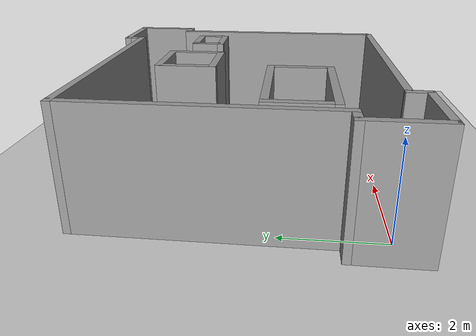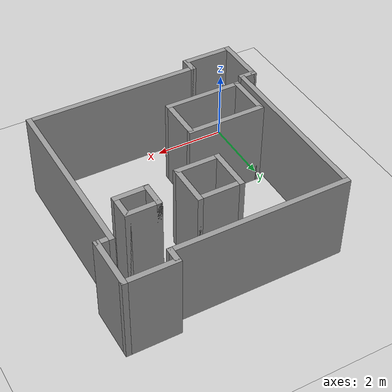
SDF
<?xml version="1.0" ?>
<sdf version='1.8'>
  <world name='map_ign'>

    <plugin
      filename="gz-sim-physics-system"
      name="gz::sim::systems::Physics">
    </plugin>
    <plugin
      filename="gz-sim-user-commands-system"
      name="gz::sim::systems::UserCommands">
    </plugin>
    <plugin
      filename="gz-sim-scene-broadcaster-system"
      name="gz::sim::systems::SceneBroadcaster">
    </plugin>
    <plugin
      filename="gz-sim-sensors-system"
      name="gz::sim::systems::Sensors">
      <render_engine>ogre</render_engine>
    </plugin>
    <plugin
      filename="gz-sim-imu-system"
      name="gz::sim::systems::Imu">
    </plugin>

    <gravity>0 0 -9.8000000000000007</gravity>
    <magnetic_field>6.0000000000000002e-06 2.3e-05 -4.1999999999999998e-05</magnetic_field>
    <atmosphere type='adiabatic'/>

    <physics type='ode'>
      <max_step_size>0.001</max_step_size>
      <real_time_factor>1</real_time_factor>
      <real_time_update_rate>1000</real_time_update_rate>
    </physics>

    <scene>
      <ambient>0.400000006 0.400000006 0.400000006 1</ambient>
      <background>0.699999988 0.699999988 0.699999988 1</background>
      <shadows>true</shadows>
    </scene>

    <audio>
      <device>default</device>
    </audio>
    <wind/>

    <spherical_coordinates>
      <surface_model>EARTH_WGS84</surface_model>
      <latitude_deg>0</latitude_deg>
      <longitude_deg>0</longitude_deg>
      <elevation>0</elevation>
      <heading_deg>0</heading_deg>
    </spherical_coordinates>

    <!-- The state tag contained saved simulation state which caused conflicts -->
    <model name='wall_simple'>
        <pose>2.75 2.75 0 0 0 0</pose>
        <scale>1 1 1</scale>
        <link name='Wall_10'>
          <pose>-0.34999999999999998 0.82499999999999996 0 0 0 3.1415899999999999</pose>
          <velocity>0 0 0 0 0 0</velocity>
          <acceleration>0 0 0 0 0 0</acceleration>
          <wrench>0 0 0 0 0 0</wrench>
        </link>
        <link name='Wall_11'>
          <pose>-0.52500000000000002 0.14999999999999999 0 0 0 -1.5708</pose>
          <velocity>0 0 0 0 0 0</velocity>
          <acceleration>0 0 0 0 0 0</acceleration>
          <wrench>0 0 0 0 0 0</wrench>
        </link>
        <link name='Wall_12'>
          <pose>0.14999999999999999 -0.52500000000000002 0 0 0 0</pose>
          <velocity>0 0 0 0 0 0</velocity>
          <acceleration>0 0 0 0 0 0</acceleration>
          <wrench>0 0 0 0 0 0</wrench>
        </link>
        <link name='Wall_13'>
          <pose>0.82499999999999996 -0.34999999999999998 0 0 0 1.5708</pose>
          <velocity>0 0 0 0 0 0</velocity>
          <acceleration>0 0 0 0 0 0</acceleration>
          <wrench>0 0 0 0 0 0</wrench>
        </link>
        <link name='Wall_14'>
          <pose>3.25 -0.17499999999999999 0 0 0 0</pose>
          <velocity>0 0 0 0 0 0</velocity>
          <acceleration>0 0 0 0 0 0</acceleration>
          <wrench>0 0 0 0 0 0</wrench>
        </link>
        <link name='Wall_15'>
          <pose>5.6749999999999998 2.25 0 0 0 1.5708</pose>
          <velocity>0 0 0 0 0 0</velocity>
          <acceleration>0 0 0 0 0 0</acceleration>
          <wrench>0 0 0 0 0 0</wrench>
        </link>
        <link name='Wall_16'>
          <pose>5.8499999999999996 4.6749999999999998 0 0 0 0</pose>
          <velocity>0 0 0 0 0 0</velocity>
          <acceleration>0 0 0 0 0 0</acceleration>
          <wrench>0 0 0 0 0 0</wrench>
        </link>
        <link name='Wall_17'>
          <pose>6.0250000000000004 5.3499999999999996 0 0 0 1.5708</pose>
          <velocity>0 0 0 0 0 0</velocity>
          <acceleration>0 0 0 0 0 0</acceleration>
          <wrench>0 0 0 0 0 0</wrench>
        </link>
        <link name='Wall_18'>
          <pose>5.3499999999999996 6.0250000000000004 0 0 0 3.1415899999999999</pose>
          <velocity>0 0 0 0 0 0</velocity>
          <acceleration>0 0 0 0 0 0</acceleration>
          <wrench>0 0 0 0 0 0</wrench>
        </link>
        <link name='Wall_19'>
          <pose>4.6749999999999998 5.8499999999999996 0 0 0 -1.5708</pose>
          <velocity>0 0 0 0 0 0</velocity>
          <acceleration>0 0 0 0 0 0</acceleration>
          <wrench>0 0 0 0 0 0</wrench>
        </link>
        <link name='Wall_20'>
          <pose>2.25 5.6749999999999998 0 0 0 3.1415899999999999</pose>
          <velocity>0 0 0 0 0 0</velocity>
          <acceleration>0 0 0 0 0 0</acceleration>
          <wrench>0 0 0 0 0 0</wrench>
        </link>
        <link name='Wall_21'>
          <pose>-0.17499999999999999 3.25 0 0 0 -1.5708</pose>
          <velocity>0 0 0 0 0 0</velocity>
          <acceleration>0 0 0 0 0 0</acceleration>
          <wrench>0 0 0 0 0 0</wrench>
        </link>
        <link name='Wall_26'>
          <pose>1.1683300000000001 1.0412300000000001 0 0 0 3.1415899999999999</pose>
          <velocity>0 0 0 0 0 0</velocity>
          <acceleration>0 0 0 0 0 0</acceleration>
          <wrench>0 0 0 0 0 0</wrench>
        </link>
        <link name='Wall_32'>
          <pose>4.6026699999999998 3.5624199999999999 0 0 0 3.1415899999999999</pose>
          <velocity>0 0 0 0 0 0</velocity>
          <acceleration>0 0 0 0 0 0</acceleration>
          <wrench>0 0 0 0 0 0</wrench>
        </link>
        <link name='Wall_41'>
          <pose>4.17767 3.8624200000000002 0 0 0 1.5708</pose>
          <velocity>0 0 0 0 0 0</velocity>
          <acceleration>0 0 0 0 0 0</acceleration>
          <wrench>0 0 0 0 0 0</wrench>
        </link>
        <link name='Wall_42'>
          <pose>4.6026699999999998 4.16242 0 0 0 0</pose>
          <velocity>0 0 0 0 0 0</velocity>
          <acceleration>0 0 0 0 0 0</acceleration>
          <wrench>0 0 0 0 0 0</wrench>
        </link>
        <link name='Wall_43'>
          <pose>5.0276699999999996 3.8624200000000002 0 0 0 -1.5708</pose>
          <velocity>0 0 0 0 0 0</velocity>
          <acceleration>0 0 0 0 0 0</acceleration>
          <wrench>0 0 0 0 0 0</wrench>
        </link>
        <link name='Wall_46'>
          <pose>2.6956199999999999 3.40097 0 0 0 3.1415899999999999</pose>
          <velocity>0 0 0 0 0 0</velocity>
          <acceleration>0 0 0 0 0 0</acceleration>
          <wrench>0 0 0 0 0 0</wrench>
        </link>
        <link name='Wall_47'>
          <pose>2.1096699999999999 3.9509699999999999 0 0 0 1.5708</pose>
          <velocity>0 0 0 0 0 0</velocity>
          <acceleration>0 0 0 0 0 0</acceleration>
          <wrench>0 0 0 0 0 0</wrench>
        </link>
        <link name='Wall_48'>
          <pose>2.6956199999999999 4.5009699999999997 0 0 0 0</pose>
          <velocity>0 0 0 0 0 0</velocity>
          <acceleration>0 0 0 0 0 0</acceleration>
          <wrench>0 0 0 0 0 0</wrench>
        </link>
        <link name='Wall_49'>
          <pose>3.2669000000000001 3.9509699999999999 0 0 0 -1.5708</pose>
          <velocity>0 0 0 0 0 0</velocity>
          <acceleration>0 0 0 0 0 0</acceleration>
          <wrench>0 0 0 0 0 0</wrench>
        </link>
        <link name='Wall_51'>
          <pose>0.11833 1.6432599999999999 0 0 0 1.5708</pose>
          <velocity>0 0 0 0 0 0</velocity>
          <acceleration>0 0 0 0 0 0</acceleration>
          <wrench>0 0 0 0 0 0</wrench>
        </link>
        <link name='Wall_52'>
          <pose>1.1683300000000001 2.2306300000000001 0 0 0 0</pose>
          <velocity>0 0 0 0 0 0</velocity>
          <acceleration>0 0 0 0 0 0</acceleration>
          <wrench>0 0 0 0 0 0</wrench>
        </link>
        <link name='Wall_53'>
          <pose>2.2183299999999999 1.6432599999999999 0 0 0 -1.5708</pose>
          <velocity>0 0 0 0 0 0</velocity>
          <acceleration>0 0 0 0 0 0</acceleration>
          <wrench>0 0 0 0 0 0</wrench>
        </link>
      </model>

    <!-- Removed state tag content to avoid duplicate definitions -->

    <gui fullscreen='false'>
      <camera name='user_camera'>
        <pose>-0.00172 0.003388 10.028 1.0000000009550425e-06 1.5156400000000032 1.9441900000000003</pose>
        <view_controller>orbit</view_controller>
        <projection_type>perspective</projection_type>
      </camera>
    </gui>

    <model name='ground_plane'>
      <static>true</static>
      <link name='link'>
        <collision name='collision'>
          <geometry>
            <plane>
              <normal>0 0 1</normal>
              <size>100 100</size>
            </plane>
          </geometry>
          <surface>
            <friction>
              <ode>
                <mu>100</mu>
                <mu2>50</mu2>
              </ode>
              <torsional>
                <ode/>
              </torsional>
            </friction>
            <contact>
              <ode/>
            </contact>
            <bounce/>
          </surface>
          <max_contacts>10</max_contacts>
        </collision>
        <visual name='visual'>
          <cast_shadows>false</cast_shadows>
          <geometry>
            <plane>
              <normal>0 0 1</normal>
              <size>100 100</size>
            </plane>
          </geometry>
          <material>
            <script>
              <uri>file://media/materials/scripts/gazebo.material</uri>
              <name>Gazebo/Grey</name>
            </script>
            <ambient>0.8 0.8 0.8 1</ambient>
            <diffuse>0.8 0.8 0.8 1</diffuse>
            <specular>0.1 0.1 0.1 1</specular>
          </material>
        </visual>
        <self_collide>false</self_collide>
        <enable_wind>false</enable_wind>
        <kinematic>false</kinematic>
        <pose>0 0 0 0 0 0</pose>
        <inertial>
          <pose>0 0 0 0 0 0</pose>
          <mass>1</mass>
          <inertia>
            <ixx>1</ixx>
            <ixy>0</ixy>
            <ixz>0</ixz>
            <iyy>1</iyy>
            <iyz>0</iyz>
            <izz>1</izz>
          </inertia>
        </inertial>
      </link>
      <pose>0 0 0 0 0 0</pose>
      <self_collide>false</self_collide>
    </model>

    <model name='wall_simple'>
      <pose>2.75 2.75 0 0 0 0</pose>
      <link name='Wall_10'>
        <collision name='Wall_10_Collision'>
          <geometry>
            <box>
              <size>0.5 0.14999999999999999 2.5</size>
            </box>
          </geometry>
          <pose>0 0 1.25 0 0 0</pose>
          <max_contacts>10</max_contacts>
          <surface>
            <contact>
              <ode/>
            </contact>
            <bounce/>
            <friction>
              <torsional>
                <ode/>
              </torsional>
              <ode/>
            </friction>
          </surface>
        </collision>
        <visual name='Wall_10_Visual'>
          <pose>0 0 1.25 0 0 0</pose>
          <geometry>
            <box>
              <size>0.5 0.14999999999999999 2.5</size>
            </box>
          </geometry>
          <material>
            <script>
              <uri>file://media/materials/scripts/gazebo.material</uri>
              <name>Gazebo/Grey</name>
            </script>
            <ambient>1 1 1 1</ambient>
            <diffuse>0.8 0.8 0.8 1</diffuse>
            <specular>0.1 0.1 0.1 1</specular>
          </material>
          <meta>
            <layer>0</layer>
          </meta>
        </visual>
        <pose>-3.1000000000000001 -1.925 0 0 0 3.1415899999999999</pose>
        <self_collide>false</self_collide>
        <enable_wind>false</enable_wind>
        <kinematic>false</kinematic>
        <inertial>
          <pose>0 0 0 0 0 0</pose>
          <mass>1</mass>
          <inertia>
            <ixx>1</ixx>
            <ixy>0</ixy>
            <ixz>0</ixz>
            <iyy>1</iyy>
            <iyz>0</iyz>
            <izz>1</izz>
          </inertia>
        </inertial>
      </link>
      <link name='Wall_11'>
        <collision name='Wall_11_Collision'>
          <geometry>
            <box>
              <size>1.5 0.14999999999999999 2.5</size>
            </box>
          </geometry>
          <pose>0 0 1.25 0 0 0</pose>
          <max_contacts>10</max_contacts>
          <surface>
            <contact>
              <ode/>
            </contact>
            <bounce/>
            <friction>
              <torsional>
                <ode/>
              </torsional>
              <ode/>
            </friction>
          </surface>
        </collision>
        <visual name='Wall_11_Visual'>
          <pose>0 0 1.25 0 0 0</pose>
          <geometry>
            <box>
              <size>1.5 0.14999999999999999 2.5</size>
            </box>
          </geometry>
          <material>
            <script>
              <uri>file://media/materials/scripts/gazebo.material</uri>
              <name>Gazebo/Grey</name>
            </script>
            <ambient>1 1 1 1</ambient>
            <diffuse>0.8 0.8 0.8 1</diffuse>
            <specular>0.1 0.1 0.1 1</specular>
          </material>
          <meta>
            <layer>0</layer>
          </meta>
        </visual>
        <pose>-3.2750000000000017 -2.5999999999999988 0 0 0 -1.5708000000000009</pose>
        <self_collide>false</self_collide>
        <enable_wind>false</enable_wind>
        <kinematic>false</kinematic>
        <inertial>
          <pose>0 0 0 0 0 0</pose>
          <mass>1</mass>
          <inertia>
            <ixx>1</ixx>
            <ixy>0</ixy>
            <ixz>0</ixz>
            <iyy>1</iyy>
            <iyz>0</iyz>
            <izz>1</izz>
          </inertia>
        </inertial>
      </link>
      <link name='Wall_12'>
        <collision name='Wall_12_Collision'>
          <geometry>
            <box>
              <size>1.5 0.14999999999999999 2.5</size>
            </box>
          </geometry>
          <pose>0 0 1.25 0 0 0</pose>
          <max_contacts>10</max_contacts>
          <surface>
            <contact>
              <ode/>
            </contact>
            <bounce/>
            <friction>
              <torsional>
                <ode/>
              </torsional>
              <ode/>
            </friction>
          </surface>
        </collision>
        <visual name='Wall_12_Visual'>
          <pose>0 0 1.25 0 0 0</pose>
          <geometry>
            <box>
              <size>1.5 0.14999999999999999 2.5</size>
            </box>
          </geometry>
          <material>
            <script>
              <uri>file://media/materials/scripts/gazebo.material</uri>
              <name>Gazebo/Grey</name>
            </script>
            <ambient>1 1 1 1</ambient>
            <diffuse>0.8 0.8 0.8 1</diffuse>
            <specular>0.1 0.1 0.1 1</specular>
          </material>
          <meta>
            <layer>0</layer>
          </meta>
        </visual>
        <pose>-2.6000000000000028 -3.2749999999999986 0 0 0 0</pose>
        <self_collide>false</self_collide>
        <enable_wind>false</enable_wind>
        <kinematic>false</kinematic>
        <inertial>
          <pose>0 0 0 0 0 0</pose>
          <mass>1</mass>
          <inertia>
            <ixx>1</ixx>
            <ixy>0</ixy>
            <ixz>0</ixz>
            <iyy>1</iyy>
            <iyz>0</iyz>
            <izz>1</izz>
          </inertia>
        </inertial>
      </link>
      <link name='Wall_13'>
        <collision name='Wall_13_Collision'>
          <geometry>
            <box>
              <size>0.5 0.14999999999999999 2.5</size>
            </box>
          </geometry>
          <pose>0 0 1.25 0 0 0</pose>
          <max_contacts>10</max_contacts>
          <surface>
            <contact>
              <ode/>
            </contact>
            <bounce/>
            <friction>
              <torsional>
                <ode/>
              </torsional>
              <ode/>
            </friction>
          </surface>
        </collision>
        <visual name='Wall_13_Visual'>
          <pose>0 0 1.25 0 0 0</pose>
          <geometry>
            <box>
              <size>0.5 0.14999999999999999 2.5</size>
            </box>
          </geometry>
          <material>
            <script>
              <uri>file://media/materials/scripts/gazebo.material</uri>
              <name>Gazebo/Grey</name>
            </script>
            <ambient>1 1 1 1</ambient>
            <diffuse>0.8 0.8 0.8 1</diffuse>
            <specular>0.1 0.1 0.1 1</specular>
          </material>
          <meta>
            <layer>0</layer>
          </meta>
        </visual>
        <pose>-1.925000000000002 -3.0999999999999988 0 0 0 1.5708000000000009</pose>
        <self_collide>false</self_collide>
        <enable_wind>false</enable_wind>
        <kinematic>false</kinematic>
        <inertial>
          <pose>0 0 0 0 0 0</pose>
          <mass>1</mass>
          <inertia>
            <ixx>1</ixx>
            <ixy>0</ixy>
            <ixz>0</ixz>
            <iyy>1</iyy>
            <iyz>0</iyz>
            <izz>1</izz>
          </inertia>
        </inertial>
      </link>
      <link name='Wall_14'>
        <collision name='Wall_14_Collision'>
          <geometry>
            <box>
              <size>5 0.14999999999999999 2.5</size>
            </box>
          </geometry>
          <pose>0 0 1.25 0 0 0</pose>
          <max_contacts>10</max_contacts>
          <surface>
            <contact>
              <ode/>
            </contact>
            <bounce/>
            <friction>
              <torsional>
                <ode/>
              </torsional>
              <ode/>
            </friction>
          </surface>
        </collision>
        <visual name='Wall_14_Visual'>
          <pose>0 0 1.25 0 0 0</pose>
          <geometry>
            <box>
              <size>5 0.14999999999999999 2.5</size>
            </box>
          </geometry>
          <material>
            <script>
              <uri>file://media/materials/scripts/gazebo.material</uri>
              <name>Gazebo/Grey</name>
            </script>
            <ambient>1 1 1 1</ambient>
            <diffuse>0.8 0.8 0.8 1</diffuse>
            <specular>0.1 0.1 0.1 1</specular>
          </material>
          <meta>
            <layer>0</layer>
          </meta>
        </visual>
        <pose>0.49999999999999867 -2.924999999999998 0 0 0 0</pose>
        <self_collide>false</self_collide>
        <enable_wind>false</enable_wind>
        <kinematic>false</kinematic>
        <inertial>
          <pose>0 0 0 0 0 0</pose>
          <mass>1</mass>
          <inertia>
            <ixx>1</ixx>
            <ixy>0</ixy>
            <ixz>0</ixz>
            <iyy>1</iyy>
            <iyz>0</iyz>
            <izz>1</izz>
          </inertia>
        </inertial>
      </link>
      <link name='Wall_15'>
        <collision name='Wall_15_Collision'>
          <geometry>
            <box>
              <size>5 0.14999999999999999 2.5</size>
            </box>
          </geometry>
          <pose>0 0 1.25 0 0 0</pose>
          <max_contacts>10</max_contacts>
          <surface>
            <contact>
              <ode/>
            </contact>
            <bounce/>
            <friction>
              <torsional>
                <ode/>
              </torsional>
              <ode/>
            </friction>
          </surface>
        </collision>
        <visual name='Wall_15_Visual'>
          <pose>0 0 1.25 0 0 0</pose>
          <geometry>
            <box>
              <size>5 0.14999999999999999 2.5</size>
            </box>
          </geometry>
          <material>
            <script>
              <uri>file://media/materials/scripts/gazebo.material</uri>
              <name>Gazebo/Grey</name>
            </script>
            <ambient>1 1 1 1</ambient>
            <diffuse>0.8 0.8 0.8 1</diffuse>
            <specular>0.1 0.1 0.1 1</specular>
          </material>
          <meta>
            <layer>0</layer>
          </meta>
        </visual>
        <pose>2.924999999999998 -0.49999999999999822 0 0 0 1.5708000000000009</pose>
        <self_collide>false</self_collide>
        <enable_wind>false</enable_wind>
        <kinematic>false</kinematic>
        <inertial>
          <pose>0 0 0 0 0 0</pose>
          <mass>1</mass>
          <inertia>
            <ixx>1</ixx>
            <ixy>0</ixy>
            <ixz>0</ixz>
            <iyy>1</iyy>
            <iyz>0</iyz>
            <izz>1</izz>
          </inertia>
        </inertial>
      </link>
      <link name='Wall_16'>
        <collision name='Wall_16_Collision'>
          <geometry>
            <box>
              <size>0.5 0.14999999999999999 2.5</size>
            </box>
          </geometry>
          <pose>0 0 1.25 0 0 0</pose>
          <max_contacts>10</max_contacts>
          <surface>
            <contact>
              <ode/>
            </contact>
            <bounce/>
            <friction>
              <torsional>
                <ode/>
              </torsional>
              <ode/>
            </friction>
          </surface>
        </collision>
        <visual name='Wall_16_Visual'>
          <pose>0 0 1.25 0 0 0</pose>
          <geometry>
            <box>
              <size>0.5 0.14999999999999999 2.5</size>
            </box>
          </geometry>
          <material>
            <script>
              <uri>file://media/materials/scripts/gazebo.material</uri>
              <name>Gazebo/Grey</name>
            </script>
            <ambient>1 1 1 1</ambient>
            <diffuse>0.8 0.8 0.8 1</diffuse>
            <specular>0.1 0.1 0.1 1</specular>
          </material>
          <meta>
            <layer>0</layer>
          </meta>
        </visual>
        <pose>3.0999999999999988 1.9250000000000025 0 0 0 0</pose>
        <self_collide>false</self_collide>
        <enable_wind>false</enable_wind>
        <kinematic>false</kinematic>
        <inertial>
          <pose>0 0 0 0 0 0</pose>
          <mass>1</mass>
          <inertia>
            <ixx>1</ixx>
            <ixy>0</ixy>
            <ixz>0</ixz>
            <iyy>1</iyy>
            <iyz>0</iyz>
            <izz>1</izz>
          </inertia>
        </inertial>
      </link>
      <link name='Wall_17'>
        <collision name='Wall_17_Collision'>
          <geometry>
            <box>
              <size>1.5 0.14999999999999999 2.5</size>
            </box>
          </geometry>
          <pose>0 0 1.25 0 0 0</pose>
          <max_contacts>10</max_contacts>
          <surface>
            <contact>
              <ode/>
            </contact>
            <bounce/>
            <friction>
              <torsional>
                <ode/>
              </torsional>
              <ode/>
            </friction>
          </surface>
        </collision>
        <visual name='Wall_17_Visual'>
          <pose>0 0 1.25 0 0 0</pose>
          <geometry>
            <box>
              <size>1.5 0.14999999999999999 2.5</size>
            </box>
          </geometry>
          <material>
            <script>
              <uri>file://media/materials/scripts/gazebo.material</uri>
              <name>Gazebo/Grey</name>
            </script>
            <ambient>1 1 1 1</ambient>
            <diffuse>0.8 0.8 0.8 1</diffuse>
            <specular>0.1 0.1 0.1 1</specular>
          </material>
          <meta>
            <layer>0</layer>
          </meta>
        </visual>
        <pose>3.2749999999999977 2.6000000000000023 0 0 0 1.5708000000000009</pose>
        <self_collide>false</self_collide>
        <enable_wind>false</enable_wind>
        <kinematic>false</kinematic>
        <inertial>
          <pose>0 0 0 0 0 0</pose>
          <mass>1</mass>
          <inertia>
            <ixx>1</ixx>
            <ixy>0</ixy>
            <ixz>0</ixz>
            <iyy>1</iyy>
            <iyz>0</iyz>
            <izz>1</izz>
          </inertia>
        </inertial>
      </link>
      <link name='Wall_18'>
        <collision name='Wall_18_Collision'>
          <geometry>
            <box>
              <size>1.5 0.14999999999999999 2.5</size>
            </box>
          </geometry>
          <pose>0 0 1.25 0 0 0</pose>
          <max_contacts>10</max_contacts>
          <surface>
            <contact>
              <ode/>
            </contact>
            <bounce/>
            <friction>
              <torsional>
                <ode/>
              </torsional>
              <ode/>
            </friction>
          </surface>
        </collision>
        <visual name='Wall_18_Visual'>
          <pose>0 0 1.25 0 0 0</pose>
          <geometry>
            <box>
              <size>1.5 0.14999999999999999 2.5</size>
            </box>
          </geometry>
          <material>
            <script>
              <uri>file://media/materials/scripts/gazebo.material</uri>
              <name>Gazebo/Grey</name>
            </script>
            <ambient>1 1 1 1</ambient>
            <diffuse>0.8 0.8 0.8 1</diffuse>
            <specular>0.1 0.1 0.1 1</specular>
          </material>
          <meta>
            <layer>0</layer>
          </meta>
        </visual>
        <pose>2.5999999999999988 3.2750000000000012 0 0 0 3.1415899999999999</pose>
        <self_collide>false</self_collide>
        <enable_wind>false</enable_wind>
        <kinematic>false</kinematic>
        <inertial>
          <pose>0 0 0 0 0 0</pose>
          <mass>1</mass>
          <inertia>
            <ixx>1</ixx>
            <ixy>0</ixy>
            <ixz>0</ixz>
            <iyy>1</iyy>
            <iyz>0</iyz>
            <izz>1</izz>
          </inertia>
        </inertial>
      </link>
      <link name='Wall_19'>
        <collision name='Wall_19_Collision'>
          <geometry>
            <box>
              <size>0.5 0.14999999999999999 2.5</size>
            </box>
          </geometry>
          <pose>0 0 1.25 0 0 0</pose>
          <max_contacts>10</max_contacts>
          <surface>
            <contact>
              <ode/>
            </contact>
            <bounce/>
            <friction>
              <torsional>
                <ode/>
              </torsional>
              <ode/>
            </friction>
          </surface>
        </collision>
        <visual name='Wall_19_Visual'>
          <pose>0 0 1.25 0 0 0</pose>
          <geometry>
            <box>
              <size>0.5 0.14999999999999999 2.5</size>
            </box>
          </geometry>
          <material>
            <script>
              <uri>file://media/materials/scripts/gazebo.material</uri>
              <name>Gazebo/Grey</name>
            </script>
            <ambient>1 1 1 1</ambient>
            <diffuse>0.8 0.8 0.8 1</diffuse>
            <specular>0.1 0.1 0.1 1</specular>
          </material>
          <meta>
            <layer>0</layer>
          </meta>
        </visual>
        <pose>1.924999999999998 3.1000000000000014 0 0 0 -1.5708000000000009</pose>
        <self_collide>false</self_collide>
        <enable_wind>false</enable_wind>
        <kinematic>false</kinematic>
        <inertial>
          <pose>0 0 0 0 0 0</pose>
          <mass>1</mass>
          <inertia>
            <ixx>1</ixx>
            <ixy>0</ixy>
            <ixz>0</ixz>
            <iyy>1</iyy>
            <iyz>0</iyz>
            <izz>1</izz>
          </inertia>
        </inertial>
      </link>
      <link name='Wall_20'>
        <collision name='Wall_20_Collision'>
          <geometry>
            <box>
              <size>5 0.14999999999999999 2.5</size>
            </box>
          </geometry>
          <pose>0 0 1.25 0 0 0</pose>
          <max_contacts>10</max_contacts>
          <surface>
            <contact>
              <ode/>
            </contact>
            <bounce/>
            <friction>
              <torsional>
                <ode/>
              </torsional>
              <ode/>
            </friction>
          </surface>
        </collision>
        <visual name='Wall_20_Visual'>
          <pose>0 0 1.25 0 0 0</pose>
          <geometry>
            <box>
              <size>5 0.14999999999999999 2.5</size>
            </box>
          </geometry>
          <material>
            <script>
              <uri>file://media/materials/scripts/gazebo.material</uri>
              <name>Gazebo/Grey</name>
            </script>
            <ambient>1 1 1 1</ambient>
            <diffuse>0.8 0.8 0.8 1</diffuse>
            <specular>0.1 0.1 0.1 1</specular>
          </material>
          <meta>
            <layer>0</layer>
          </meta>
        </visual>
        <pose>-0.50000000000000133 2.9250000000000016 0 0 0 3.1415899999999999</pose>
        <self_collide>false</self_collide>
        <enable_wind>false</enable_wind>
        <kinematic>false</kinematic>
        <inertial>
          <pose>0 0 0 0 0 0</pose>
          <mass>1</mass>
          <inertia>
            <ixx>1</ixx>
            <ixy>0</ixy>
            <ixz>0</ixz>
            <iyy>1</iyy>
            <iyz>0</iyz>
            <izz>1</izz>
          </inertia>
        </inertial>
      </link>
      <link name='Wall_21'>
        <collision name='Wall_21_Collision'>
          <geometry>
            <box>
              <size>5 0.14999999999999999 2.5</size>
            </box>
          </geometry>
          <pose>0 0 1.25 0 0 0</pose>
          <max_contacts>10</max_contacts>
          <surface>
            <contact>
              <ode/>
            </contact>
            <bounce/>
            <friction>
              <torsional>
                <ode/>
              </torsional>
              <ode/>
            </friction>
          </surface>
        </collision>
        <visual name='Wall_21_Visual'>
          <pose>0 0 1.25 0 0 0</pose>
          <geometry>
            <box>
              <size>5 0.14999999999999999 2.5</size>
            </box>
          </geometry>
          <material>
            <script>
              <uri>file://media/materials/scripts/gazebo.material</uri>
              <name>Gazebo/Grey</name>
            </script>
            <ambient>1 1 1 1</ambient>
            <diffuse>0.8 0.8 0.8 1</diffuse>
            <specular>0.1 0.1 0.1 1</specular>
          </material>
          <meta>
            <layer>0</layer>
          </meta>
        </visual>
        <pose>-2.925000000000002 0.50000000000000178 0 0 0 -1.5708000000000009</pose>
        <self_collide>false</self_collide>
        <enable_wind>false</enable_wind>
        <kinematic>false</kinematic>
        <inertial>
          <pose>0 0 0 0 0 0</pose>
          <mass>1</mass>
          <inertia>
            <ixx>1</ixx>
            <ixy>0</ixy>
            <ixz>0</ixz>
            <iyy>1</iyy>
            <iyz>0</iyz>
            <izz>1</izz>
          </inertia>
        </inertial>
      </link>
      <link name='Wall_26'>
        <collision name='Wall_26_Collision'>
          <geometry>
            <box>
              <size>2.25 0.14999999999999999 2.5</size>
            </box>
          </geometry>
          <pose>0 0 1.25 0 0 0</pose>
          <max_contacts>10</max_contacts>
          <surface>
            <contact>
              <ode/>
            </contact>
            <bounce/>
            <friction>
              <torsional>
                <ode/>
              </torsional>
              <ode/>
            </friction>
          </surface>
        </collision>
        <visual name='Wall_26_Visual'>
          <pose>0 0 1.25 0 0 0</pose>
          <geometry>
            <box>
              <size>2.25 0.14999999999999999 2.5</size>
            </box>
          </geometry>
          <material>
            <script>
              <uri>file://media/materials/scripts/gazebo.material</uri>
              <name>Gazebo/Grey</name>
            </script>
            <ambient>1 1 1 1</ambient>
            <diffuse>0.8 0.8 0.8 1</diffuse>
            <specular>0.1 0.1 0.1 1</specular>
          </material>
          <meta>
            <layer>0</layer>
          </meta>
        </visual>
        <pose>-1.5816700000000021 -1.7087699999999981 0 0 0 3.1415899999999999</pose>
        <self_collide>false</self_collide>
        <enable_wind>false</enable_wind>
        <kinematic>false</kinematic>
        <inertial>
          <pose>0 0 0 0 0 0</pose>
          <mass>1</mass>
          <inertia>
            <ixx>1</ixx>
            <ixy>0</ixy>
            <ixz>0</ixz>
            <iyy>1</iyy>
            <iyz>0</iyz>
            <izz>1</izz>
          </inertia>
        </inertial>
      </link>
      <link name='Wall_32'>
        <collision name='Wall_32_Collision'>
          <geometry>
            <box>
              <size>1 0.14999999999999999 2.5</size>
            </box>
          </geometry>
          <pose>0 0 1.25 0 0 0</pose>
          <max_contacts>10</max_contacts>
          <surface>
            <contact>
              <ode/>
            </contact>
            <bounce/>
            <friction>
              <torsional>
                <ode/>
              </torsional>
              <ode/>
            </friction>
          </surface>
        </collision>
        <visual name='Wall_32_Visual'>
          <pose>0 0 1.25 0 0 0</pose>
          <geometry>
            <box>
              <size>1 0.14999999999999999 2.5</size>
            </box>
          </geometry>
          <material>
            <script>
              <uri>file://media/materials/scripts/gazebo.material</uri>
              <name>Gazebo/Grey</name>
            </script>
            <ambient>1 1 1 1</ambient>
            <diffuse>0.8 0.8 0.8 1</diffuse>
            <specular>0.1 0.1 0.1 1</specular>
          </material>
          <meta>
            <layer>0</layer>
          </meta>
        </visual>
        <pose>1.8526699999999989 0.81242300000000212 0 0 0 3.1415899999999999</pose>
        <self_collide>false</self_collide>
        <enable_wind>false</enable_wind>
        <kinematic>false</kinematic>
        <inertial>
          <pose>0 0 0 0 0 0</pose>
          <mass>1</mass>
          <inertia>
            <ixx>1</ixx>
            <ixy>0</ixy>
            <ixz>0</ixz>
            <iyy>1</iyy>
            <iyz>0</iyz>
            <izz>1</izz>
          </inertia>
        </inertial>
      </link>
      <link name='Wall_41'>
        <collision name='Wall_41_Collision'>
          <geometry>
            <box>
              <size>0.75 0.14999999999999999 2.5</size>
            </box>
          </geometry>
          <pose>0 0 1.25 0 0 0</pose>
          <max_contacts>10</max_contacts>
          <surface>
            <contact>
              <ode/>
            </contact>
            <bounce/>
            <friction>
              <torsional>
                <ode/>
              </torsional>
              <ode/>
            </friction>
          </surface>
        </collision>
        <visual name='Wall_41_Visual'>
          <pose>0 0 1.25 0 0 0</pose>
          <geometry>
            <box>
              <size>0.75 0.14999999999999999 2.5</size>
            </box>
          </geometry>
          <material>
            <script>
              <uri>file://media/materials/scripts/gazebo.material</uri>
              <name>Gazebo/Grey</name>
            </script>
            <ambient>1 1 1 1</ambient>
            <diffuse>0.8 0.8 0.8 1</diffuse>
            <specular>0.1 0.1 0.1 1</specular>
          </material>
          <meta>
            <layer>0</layer>
          </meta>
        </visual>
        <pose>1.4276699999999982 1.112420000000002 0 0 0 1.5708000000000009</pose>
        <self_collide>false</self_collide>
        <enable_wind>false</enable_wind>
        <kinematic>false</kinematic>
        <inertial>
          <pose>0 0 0 0 0 0</pose>
          <mass>1</mass>
          <inertia>
            <ixx>1</ixx>
            <ixy>0</ixy>
            <ixz>0</ixz>
            <iyy>1</iyy>
            <iyz>0</iyz>
            <izz>1</izz>
          </inertia>
        </inertial>
      </link>
      <link name='Wall_42'>
        <collision name='Wall_42_Collision'>
          <geometry>
            <box>
              <size>1 0.14999999999999999 2.5</size>
            </box>
          </geometry>
          <pose>0 0 1.25 0 0 0</pose>
          <max_contacts>10</max_contacts>
          <surface>
            <contact>
              <ode/>
            </contact>
            <bounce/>
            <friction>
              <torsional>
                <ode/>
              </torsional>
              <ode/>
            </friction>
          </surface>
        </collision>
        <visual name='Wall_42_Visual'>
          <pose>0 0 1.25 0 0 0</pose>
          <geometry>
            <box>
              <size>1 0.14999999999999999 2.5</size>
            </box>
          </geometry>
          <material>
            <script>
              <uri>file://media/materials/scripts/gazebo.material</uri>
              <name>Gazebo/Grey</name>
            </script>
            <ambient>1 1 1 1</ambient>
            <diffuse>0.8 0.8 0.8 1</diffuse>
            <specular>0.1 0.1 0.1 1</specular>
          </material>
          <meta>
            <layer>0</layer>
          </meta>
        </visual>
        <pose>1.8526699999999989 1.4124200000000018 0 0 0 0</pose>
        <self_collide>false</self_collide>
        <enable_wind>false</enable_wind>
        <kinematic>false</kinematic>
        <inertial>
          <pose>0 0 0 0 0 0</pose>
          <mass>1</mass>
          <inertia>
            <ixx>1</ixx>
            <ixy>0</ixy>
            <ixz>0</ixz>
            <iyy>1</iyy>
            <iyz>0</iyz>
            <izz>1</izz>
          </inertia>
        </inertial>
      </link>
      <link name='Wall_43'>
        <collision name='Wall_43_Collision'>
          <geometry>
            <box>
              <size>0.75 0.14999999999999999 2.5</size>
            </box>
          </geometry>
          <pose>0 0 1.25 0 0 0</pose>
          <max_contacts>10</max_contacts>
          <surface>
            <contact>
              <ode/>
            </contact>
            <bounce/>
            <friction>
              <torsional>
                <ode/>
              </torsional>
              <ode/>
            </friction>
          </surface>
        </collision>
        <visual name='Wall_43_Visual'>
          <pose>0 0 1.25 0 0 0</pose>
          <geometry>
            <box>
              <size>0.75 0.14999999999999999 2.5</size>
            </box>
          </geometry>
          <material>
            <script>
              <uri>file://media/materials/scripts/gazebo.material</uri>
              <name>Gazebo/Grey</name>
            </script>
            <ambient>1 1 1 1</ambient>
          </material>
          <meta>
            <layer>0</layer>
          </meta>
        </visual>
        <pose>2.2776699999999979 1.112420000000002 0 0 0 -1.5708000000000009</pose>
        <self_collide>false</self_collide>
        <enable_wind>false</enable_wind>
        <kinematic>false</kinematic>
        <inertial>
          <pose>0 0 0 0 0 0</pose>
          <mass>1</mass>
          <inertia>
            <ixx>1</ixx>
            <ixy>0</ixy>
            <ixz>0</ixz>
            <iyy>1</iyy>
            <iyz>0</iyz>
            <izz>1</izz>
          </inertia>
        </inertial>
      </link>
      <link name='Wall_46'>
        <collision name='Wall_46_Collision'>
          <geometry>
            <box>
              <size>1.29257 0.14999999999999999 2.5</size>
            </box>
          </geometry>
          <pose>0 0 1.25 0 0 0</pose>
          <max_contacts>10</max_contacts>
          <surface>
            <contact>
              <ode/>
            </contact>
            <bounce/>
            <friction>
              <torsional>
                <ode/>
              </torsional>
              <ode/>
            </friction>
          </surface>
        </collision>
        <visual name='Wall_46_Visual'>
          <pose>0 0 1.25 0 0 0</pose>
          <geometry>
            <box>
              <size>1.29257 0.14999999999999999 2.5</size>
            </box>
          </geometry>
          <material>
            <script>
              <uri>file://media/materials/scripts/gazebo.material</uri>
              <name>Gazebo/Grey</name>
            </script>
            <ambient>1 1 1 1</ambient>
            <diffuse>0.8 0.8 0.8 1</diffuse>
            <specular>0.1 0.1 0.1 1</specular>
          </material>
          <meta>
            <layer>0</layer>
          </meta>
        </visual>
        <pose>-0.054383000000002735 0.65097000000000182 0 0 0 3.1415899999999999</pose>
        <self_collide>false</self_collide>
        <enable_wind>false</enable_wind>
        <kinematic>false</kinematic>
        <inertial>
          <pose>0 0 0 0 0 0</pose>
          <mass>1</mass>
          <inertia>
            <ixx>1</ixx>
            <ixy>0</ixy>
            <ixz>0</ixz>
            <iyy>1</iyy>
            <iyz>0</iyz>
            <izz>1</izz>
          </inertia>
        </inertial>
      </link>
      <link name='Wall_47'>
        <collision name='Wall_47_Collision'>
          <geometry>
            <box>
              <size>1.25 0.14999999999999999 2.5</size>
            </box>
          </geometry>
          <pose>0 0 1.25 0 0 0</pose>
          <max_contacts>10</max_contacts>
          <surface>
            <contact>
              <ode/>
            </contact>
            <bounce/>
            <friction>
              <torsional>
                <ode/>
              </torsional>
              <ode/>
            </friction>
          </surface>
        </collision>
        <visual name='Wall_47_Visual'>
          <pose>0 0 1.25 0 0 0</pose>
          <geometry>
            <box>
              <size>1.25 0.14999999999999999 2.5</size>
            </box>
          </geometry>
          <material>
            <script>
              <uri>file://media/materials/scripts/gazebo.material</uri>
              <name>Gazebo/Grey</name>
            </script>
            <ambient>1 1 1 1</ambient>
            <diffuse>0.8 0.8 0.8 1</diffuse>
            <specular>0.1 0.1 0.1 1</specular>
          </material>
          <meta>
            <layer>0</layer>
          </meta>
        </visual>
        <pose>-0.64033300000000315 1.2009700000000021 0 0 0 1.5708000000000009</pose>
        <self_collide>false</self_collide>
        <enable_wind>false</enable_wind>
        <kinematic>false</kinematic>
        <inertial>
          <pose>0 0 0 0 0 0</pose>
          <mass>1</mass>
          <inertia>
            <ixx>1</ixx>
            <ixy>0</ixy>
            <ixz>0</ixz>
            <iyy>1</iyy>
            <iyz>0</iyz>
            <izz>1</izz>
          </inertia>
        </inertial>
      </link>
      <link name='Wall_48'>
        <collision name='Wall_48_Collision'>
          <geometry>
            <box>
              <size>1.29257 0.14999999999999999 2.5</size>
            </box>
          </geometry>
          <pose>0 0 1.25 0 0 0</pose>
          <max_contacts>10</max_contacts>
          <surface>
            <contact>
              <ode/>
            </contact>
            <bounce/>
            <friction>
              <torsional>
                <ode/>
              </torsional>
              <ode/>
            </friction>
          </surface>
        </collision>
        <visual name='Wall_48_Visual'>
          <pose>0 0 1.25 0 0 0</pose>
          <geometry>
            <box>
              <size>1.29257 0.14999999999999999 2.5</size>
            </box>
          </geometry>
          <material>
            <script>
              <uri>file://media/materials/scripts/gazebo.material</uri>
              <name>Gazebo/Grey</name>
            </script>
            <ambient>1 1 1 1</ambient>
            <diffuse>0.8 0.8 0.8 1</diffuse>
            <specular>0.1 0.1 0.1 1</specular>
          </material>
          <meta>
            <layer>0</layer>
          </meta>
        </visual>
        <pose>-0.054383000000002735 1.7509700000000024 0 0 0 0</pose>
        <self_collide>false</self_collide>
        <enable_wind>false</enable_wind>
        <kinematic>false</kinematic>
        <inertial>
          <pose>0 0 0 0 0 0</pose>
          <mass>1</mass>
          <inertia>
            <ixx>1</ixx>
            <ixy>0</ixy>
            <ixz>0</ixz>
            <iyy>1</iyy>
            <iyz>0</iyz>
            <izz>1</izz>
          </inertia>
        </inertial>
      </link>
      <link name='Wall_49'>
        <collision name='Wall_49_Collision'>
          <geometry>
            <box>
              <size>1.25 0.14999999999999999 2.5</size>
            </box>
          </geometry>
          <pose>0 0 1.25 0 0 0</pose>
          <max_contacts>10</max_contacts>
          <surface>
            <contact>
              <ode/>
            </contact>
            <bounce/>
            <friction>
              <torsional>
                <ode/>
              </torsional>
              <ode/>
            </friction>
          </surface>
        </collision>
        <visual name='Wall_49_Visual'>
          <pose>0 0 1.25 0 0 0</pose>
          <geometry>
            <box>
              <size>1.25 0.14999999999999999 2.5</size>
            </box>
          </geometry>
          <material>
            <script>
              <uri>file://media/materials/scripts/gazebo.material</uri>
              <name>Gazebo/Grey</name>
            </script>
            <ambient>1 1 1 1</ambient>
            <diffuse>0.8 0.8 0.8 1</diffuse>
            <specular>0.1 0.1 0.1 1</specular>
          </material>
          <meta>
            <layer>0</layer>
          </meta>
        </visual>
        <pose>0.51690199999999686 1.2009700000000021 0 0 0 -1.5708000000000009</pose>
        <self_collide>false</self_collide>
        <enable_wind>false</enable_wind>
        <kinematic>false</kinematic>
        <inertial>
          <pose>0 0 0 0 0 0</pose>
          <mass>1</mass>
          <inertia>
            <ixx>1</ixx>
            <ixy>0</ixy>
            <ixz>0</ixz>
            <iyy>1</iyy>
            <iyz>0</iyz>
            <izz>1</izz>
          </inertia>
        </inertial>
      </link>
      <link name='Wall_51'>
        <collision name='Wall_51_Collision'>
          <geometry>
            <box>
              <size>1.32474 0.14999999999999999 2.5</size>
            </box>
          </geometry>
          <pose>0 0 1.25 0 0 0</pose>
          <max_contacts>10</max_contacts>
          <surface>
            <contact>
              <ode/>
            </contact>
            <bounce/>
            <friction>
              <torsional>
                <ode/>
              </torsional>
              <ode/>
            </friction>
          </surface>
        </collision>
        <visual name='Wall_51_Visual'>
          <pose>0 0 1.25 0 0 0</pose>
          <geometry>
            <box>
              <size>1.32474 0.14999999999999999 2.5</size>
            </box>
          </geometry>
          <material>
            <script>
              <uri>file://media/materials/scripts/gazebo.material</uri>
              <name>Gazebo/Grey</name>
            </script>
            <ambient>1 1 1 1</ambient>
            <diffuse>0.8 0.8 0.8 1</diffuse>
            <specular>0.1 0.1 0.1 1</specular>
          </material>
          <meta>
            <layer>0</layer>
          </meta>
        </visual>
        <pose>-2.6316700000000028 -1.1067399999999981 0 0 0 1.5708000000000009</pose>
        <self_collide>false</self_collide>
        <enable_wind>false</enable_wind>
        <kinematic>false</kinematic>
        <inertial>
          <pose>0 0 0 0 0 0</pose>
          <mass>1</mass>
          <inertia>
            <ixx>1</ixx>
            <ixy>0</ixy>
            <ixz>0</ixz>
            <iyy>1</iyy>
            <iyz>0</iyz>
            <izz>1</izz>
          </inertia>
        </inertial>
      </link>
      <link name='Wall_52'>
        <collision name='Wall_52_Collision'>
          <geometry>
            <box>
              <size>2.25 0.14999999999999999 2.5</size>
            </box>
          </geometry>
          <pose>0 0 1.25 0 0 0</pose>
          <max_contacts>10</max_contacts>
          <surface>
            <contact>
              <ode/>
            </contact>
            <bounce/>
            <friction>
              <torsional>
                <ode/>
              </torsional>
              <ode/>
            </friction>
          </surface>
        </collision>
        <visual name='Wall_52_Visual'>
          <pose>0 0 1.25 0 0 0</pose>
          <geometry>
            <box>
              <size>2.25 0.14999999999999999 2.5</size>
            </box>
          </geometry>
          <material>
            <script>
              <uri>file://media/materials/scripts/gazebo.material</uri>
              <name>Gazebo/Grey</name>
            </script>
            <ambient>1 1 1 1</ambient>
            <diffuse>0.8 0.8 0.8 1</diffuse>
            <specular>0.1 0.1 0.1 1</specular>
          </material>
          <meta>
            <layer>0</layer>
          </meta>
        </visual>
        <pose>-1.5816700000000021 -0.51936899999999797 0 0 0 0</pose>
        <self_collide>false</self_collide>
        <enable_wind>false</enable_wind>
        <kinematic>false</kinematic>
        <inertial>
          <pose>0 0 0 0 0 0</pose>
          <mass>1</mass>
          <inertia>
            <ixx>1</ixx>
            <ixy>0</ixy>
            <ixz>0</ixz>
            <iyy>1</iyy>
            <iyz>0</iyz>
            <izz>1</izz>
          </inertia>
        </inertial>
      </link>
      <link name='Wall_53'>
        <collision name='Wall_53_Collision'>
          <geometry>
            <box>
              <size>1.32474 0.14999999999999999 2.5</size>
            </box>
          </geometry>
          <pose>0 0 1.25 0 0 0</pose>
          <max_contacts>10</max_contacts>
          <surface>
            <contact>
              <ode/>
            </contact>
            <bounce/>
            <friction>
              <torsional>
                <ode/>
              </torsional>
              <ode/>
            </friction>
          </surface>
        </collision>
        <visual name='Wall_53_Visual'>
          <pose>0 0 1.25 0 0 0</pose>
          <geometry>
            <box>
              <size>1.32474 0.14999999999999999 2.5</size>
            </box>
          </geometry>
          <material>
            <script>
              <uri>file://media/materials/scripts/gazebo.material</uri>
              <name>Gazebo/Grey</name>
            </script>
            <ambient>1 1 1 1</ambient>
            <diffuse>0.8 0.8 0.8 1</diffuse>
            <specular>0.1 0.1 0.1 1</specular>
          </material>
          <meta>
            <layer>0</layer>
          </meta>
        </visual>
        <pose>-0.53167500000000301 -1.1067399999999981 0 0 0 -1.5708000000000009</pose>
        <self_collide>false</self_collide>
        <enable_wind>false</enable_wind>
        <kinematic>false</kinematic>
        <inertial>
          <pose>0 0 0 0 0 0</pose>
          <mass>1</mass>
          <inertia>
            <ixx>1</ixx>
            <ixy>0</ixy>
            <ixz>0</ixz>
            <iyy>1</iyy>
            <iyz>0</iyz>
            <izz>1</izz>
          </inertia>
        </inertial>
      </link>
      <static>true</static>
      <self_collide>false</self_collide>
    </model>

    <model name='box_r'>
      <link name='link'>
        <inertial>
          <mass>700</mass>
          <inertia>
            <ixx>116.667</ixx>
            <ixy>0</ixy>
            <ixz>0</ixz>
            <iyy>116.667</iyy>
            <iyz>0</iyz>
            <izz>116.667</izz>
          </inertia>
          <pose>0 0 0 0 0 0</pose>
        </inertial>
        <self_collide>false</self_collide>
        <enable_wind>false</enable_wind>
        <kinematic>false</kinematic>
        <pose>0 0 0 0 0 0</pose>
        <gravity>true</gravity>
        <visual name='visual'>
          <geometry>
            <box>
              <size>0.050000000000000003 0.050000000000000003 0.050000000000000003</size>
            </box>
          </geometry>
          <material>
            <script>
              <name>Gazebo/Grey</name>
              <uri>file://media/materials/scripts/gazebo.material</uri>
            </script>
            <shader type='pixel'>
              <normal_map>__default__</normal_map>
            </shader>
            <ambient>1 0 0 1</ambient>
            <diffuse>1 0 0 1</diffuse>
            <specular>1 0 0 1</specular>
            <emissive>1 0 0 1</emissive>
          </material>
          <pose>0 0 0 0 0 0</pose>
          <transparency>0</transparency>
          <cast_shadows>true</cast_shadows>
        </visual>
        <collision name='collision'>
          <laser_retro>0</laser_retro>
          <max_contacts>10</max_contacts>
          <pose>0 0 0 0 0 0</pose>
          <geometry>
            <box>
              <size>0.050000000000000003 0.050000000000000003 0.050000000000000003</size>
            </box>
          </geometry>
          <surface>
            <friction>
              <ode>
                <mu>1</mu>
                <mu2>1</mu2>
                <fdir1>0 0 0</fdir1>
                <slip1>0</slip1>
                <slip2>0</slip2>
              </ode>
              <torsional>
                <coefficient>1</coefficient>
                <patch_radius>0</patch_radius>
                <surface_radius>0</surface_radius>
                <use_patch_radius>true</use_patch_radius>
                <ode>
                  <slip>0</slip>
                </ode>
              </torsional>
            </friction>
            <bounce>
              <restitution_coefficient>0</restitution_coefficient>
              <threshold>1000000</threshold>
            </bounce>
            <contact>
              <collide_without_contact>false</collide_without_contact>
              <collide_without_contact_bitmask>1</collide_without_contact_bitmask>
              <collide_bitmask>1</collide_bitmask>
              <ode>
                <soft_cfm>0</soft_cfm>
                <soft_erp>0.20000000000000001</soft_erp>
                <kp>10000000000000</kp>
                <kd>1</kd>
                <max_vel>0.01</max_vel>
                <min_depth>0</min_depth>
              </ode>
              <bullet>
                <split_impulse>true</split_impulse>
                <split_impulse_penetration_threshold>-0.01</split_impulse_penetration_threshold>
                <soft_cfm>0</soft_cfm>
                <soft_erp>0.20000000000000001</soft_erp>
                <kp>10000000000000</kp>
                <kd>1</kd>
              </bullet>
            </contact>
          </surface>
        </collision>
      </link>
      <static>false</static>
      <allow_auto_disable>true</allow_auto_disable>
      <pose>0 0.5 0.025000000000000001 0 0 0</pose>
      <self_collide>false</self_collide>
    </model>

    <light name='sun' type='directional'>
      <pose>0 0 10 0 0 0</pose>
      <cast_shadows>true</cast_shadows>
      <intensity>1</intensity>
      <direction>-0.5 0.10000000000000001 -0.90000000000000002</direction>
      <diffuse>0.800000012 0.800000012 0.800000012 1</diffuse>
      <specular>0.200000003 0.200000003 0.200000003 1</specular>
      <attenuation>
        <range>1000</range>
        <linear>0.0099999997764825821</linear>
        <constant>0.89999997615814209</constant>
        <quadratic>0.0010000000474974513</quadratic>
      </attenuation>
      <spot>
        <inner_angle>0</inner_angle>
        <outer_angle>0</outer_angle>
        <falloff>0</falloff>
      </spot>
    </light>

  </world>
</sdf>
